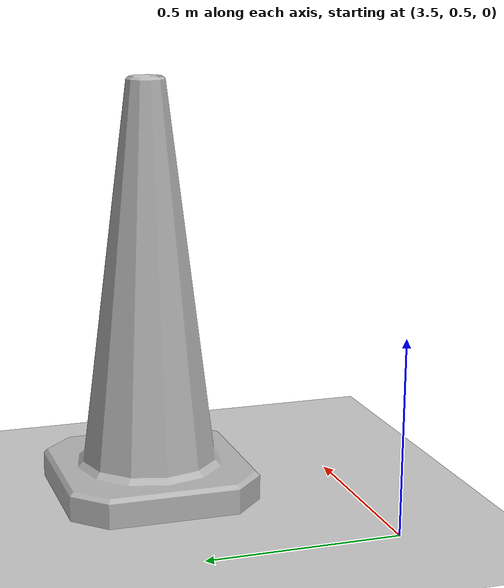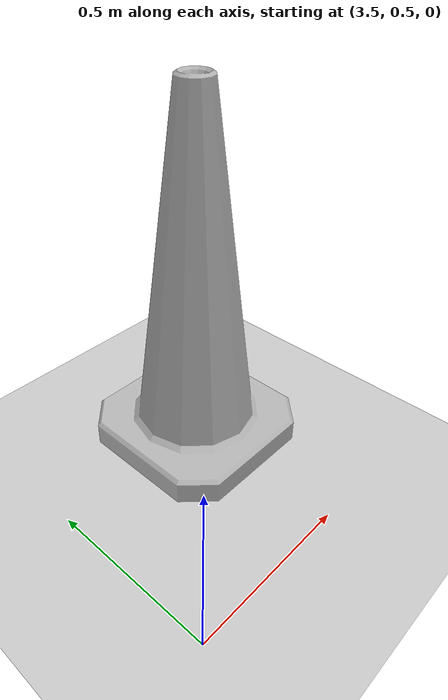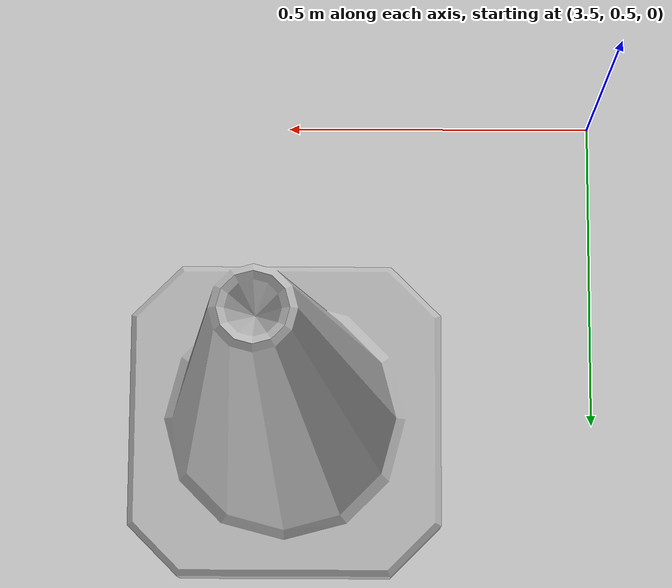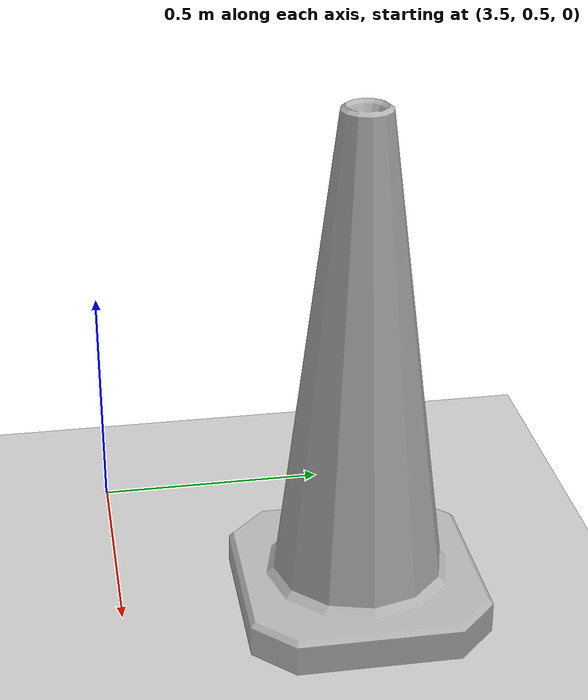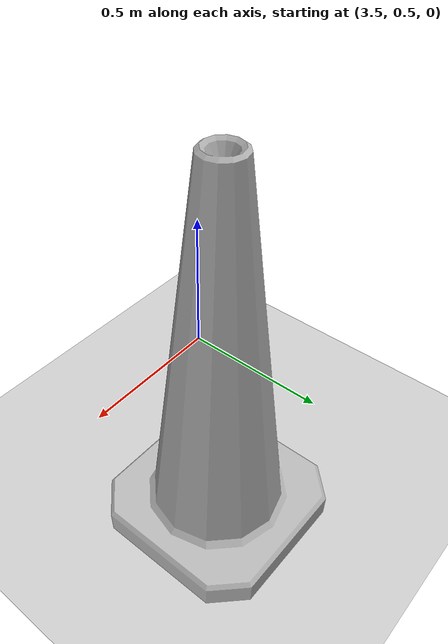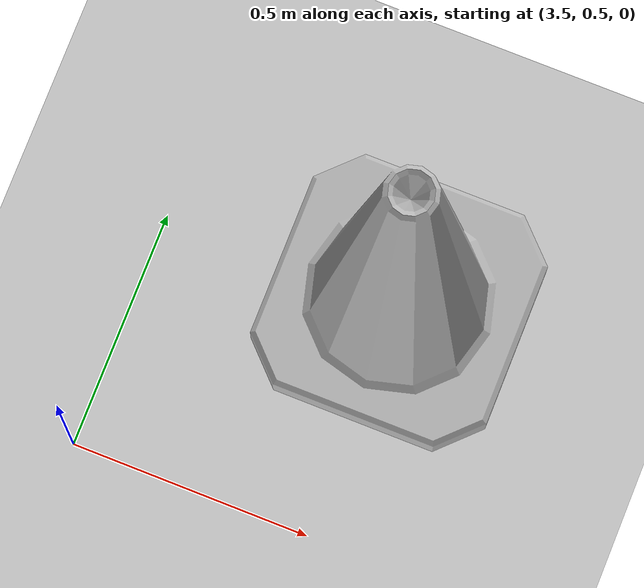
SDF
<?xml version="1.0"?>
<sdf version="1.4">
  <world name="IGVC Qualification">

    <include>
      <uri>model://grass_plane</uri>
    </include>

    <include>
      <uri>model://sun</uri>
    </include>

    <include>
      <uri>model://construction_cone</uri>
      <pose>4 1 0 0 0 0</pose>
    </include>

  </world>
</sdf>

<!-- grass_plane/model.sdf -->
<sdf version="1.4">
  <model name="grass_plane">
    <static>true</static>
          <link name='link'>
        <collision name='collision'>
          <geometry>
            <plane>
              <normal>0 0 1</normal>
              <size>75 75</size>
            </plane>
          </geometry>
          <surface>
            <friction>
              <ode>
                <mu>100</mu>
                <mu2>50</mu2>
              </ode>
            </friction>
          </surface>
        </collision>
        <visual name='visual'>
          <cast_shadows>false</cast_shadows>
          <geometry>
            <plane>
              <normal>0 0 1</normal>
              <size>75 75</size>
            </plane>
          </geometry>
          <material>
            <script>
              <uri>model://grass_plane/materials/scripts</uri>
              <uri>model://grass_plane/materials/textures</uri>
              <name>grass_plane/Image</name>
            </script>
          </material>
        </visual>
      </link>

  </model>
</sdf>

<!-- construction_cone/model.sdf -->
<sdf version="1.5">
  <model name="Construction Cone">
    <link name="link">
      <collision name="collision">
        <geometry>
          <mesh>
            <scale>10 10 10</scale>
            <uri>file://isr-testbed/construction_cone/meshes/construction_cone.dae</uri>
          </mesh>
        </geometry>
      </collision>
      <visual name="visual">
        <geometry>
          <mesh>
            <scale>10 10 10</scale>
            <uri>file://isr-testbed/construction_cone/meshes/construction_cone.dae</uri>
          </mesh>
        </geometry>
      </visual>
    </link>
  </model>
</sdf>
